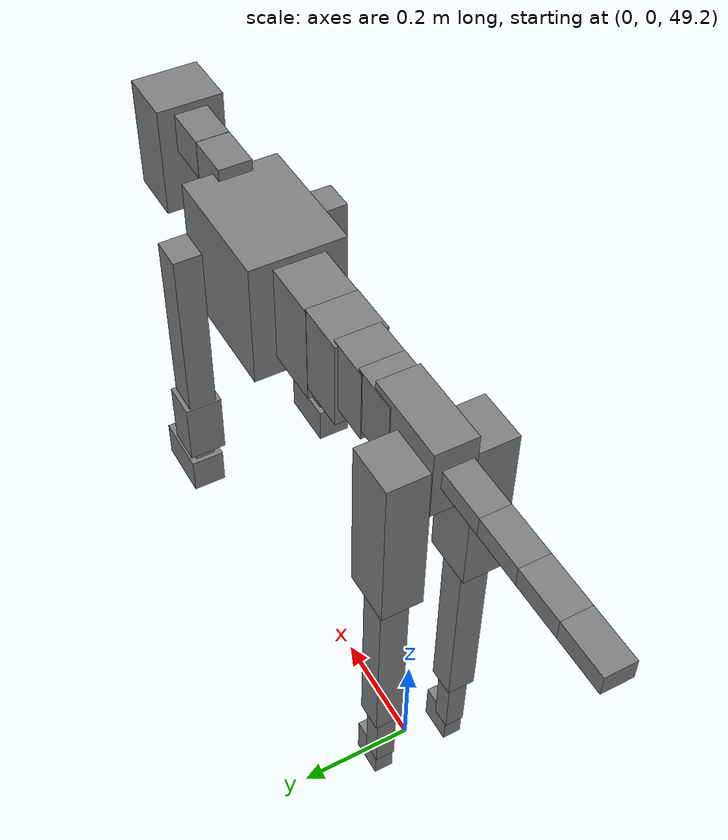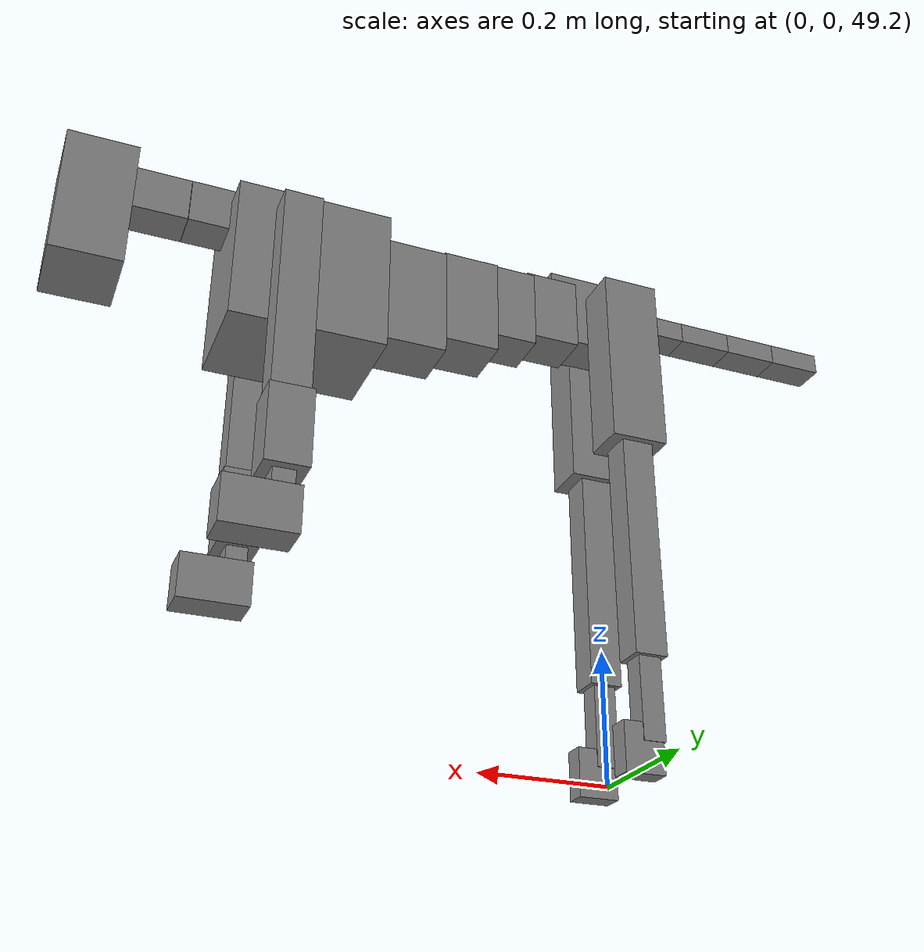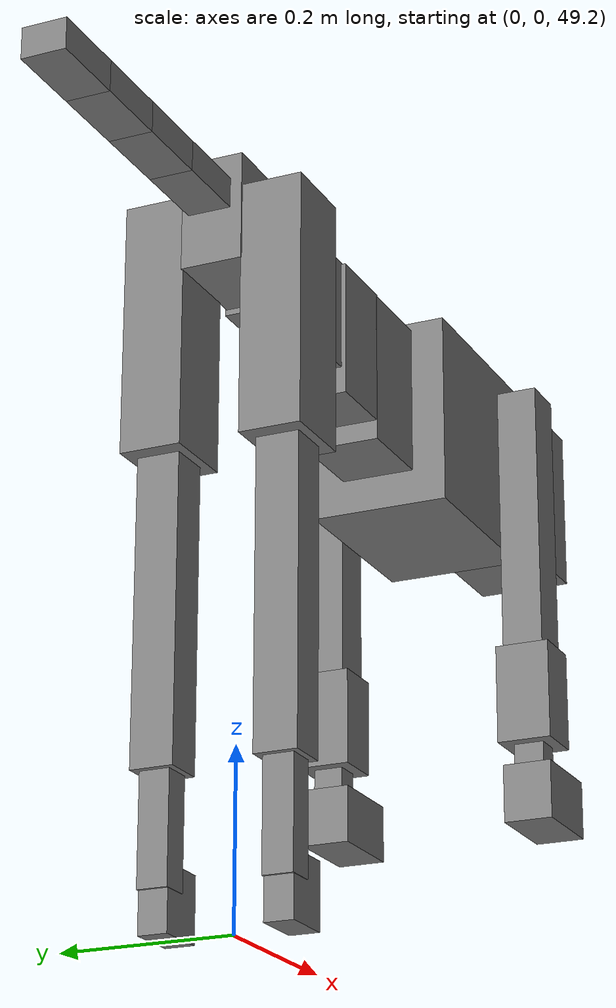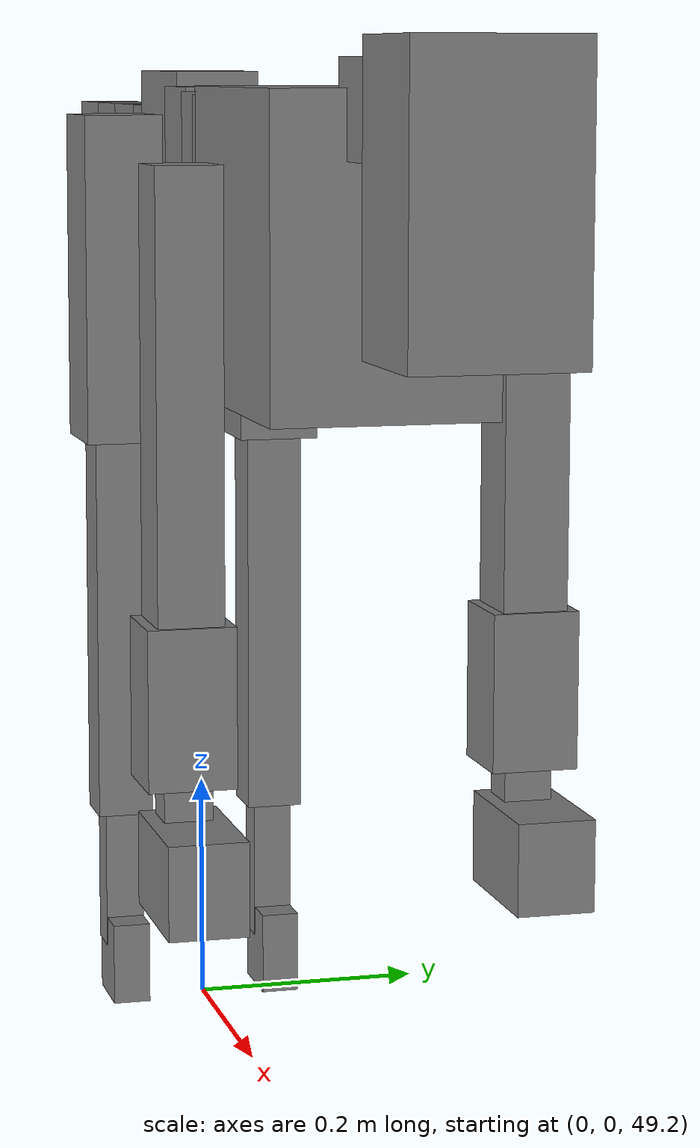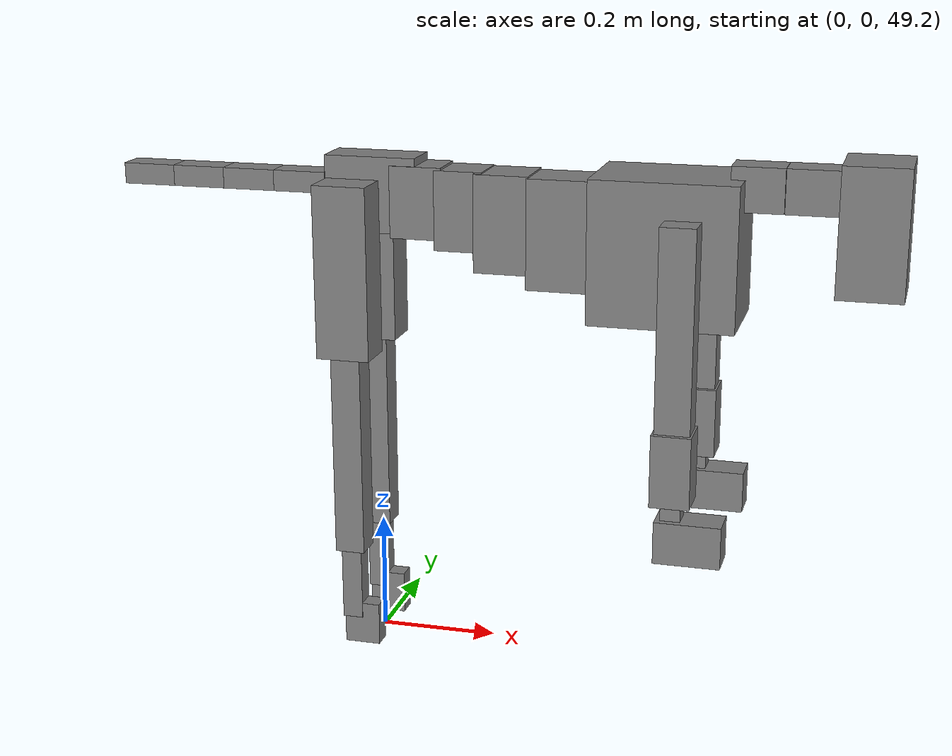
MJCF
<mujoco model="dog">

    <default>
        <joint armature="0.02" stiffness="1" damping="0.2" limited="true"/>
        <geom condim="3" friction="1 0.05 0.05" margin="0.01"/>
        <motor ctrllimited="true" ctrlrange="-1.0 1.0" forcelimited="true" gear="50"/>
    </default>

    <compiler inertiafromgeom="true" angle="radian"/>

    <option timestep="0.016" iterations="50" tolerance="1e-10" solver="Newton" jacobian="dense" cone="pyramidal"/>

    <size nconmax="20000" njmax="60000" nstack="5000000"/>
    <visual>
        <map force="0.1" zfar="30"/>
        <rgba haze="0.15 0.25 0.35 1"/>
        <quality shadowsize="2048"/>
        <global offwidth="800" offheight="800"/>
    </visual>

    <asset>
        <texture type="skybox" builtin="gradient" rgb1="0.3 0.5 0.7" rgb2="0 0 0" width="512" height="512"/>
        <texture name="texplane" type="2d" builtin="checker" rgb1=".2 .3 .4" rgb2=".1 0.15 0.2" width="512" height="512"
                 mark="cross" markrgb=".8 .8 .8"/>
        <texture name="texgeom" type="cube" builtin="flat" mark="cross" width="127" height="1278" rgb1="0.8 0.6 0.4"
                 rgb2="0.8 0.6 0.4" markrgb="1 1 1" random="0.01"/>

        <material name="matplane" reflectance="0.3" texture="texplane" texrepeat="1 1" texuniform="true"/>
        <material name="matgeom" texture="texgeom" texuniform="true" rgba="0.8 0.6 .4 1"/>
    </asset>

    <worldbody>
        <geom name="floor" pos="0 0 0" size="0 0 .25" type="plane" material="matplane" condim="3"/>

        <light directional="false" diffuse=".2 .2 .2" specular="0 0 0" pos="0 0 5" dir="0 0 -1" castshadow="false"/>
        <light mode="targetbodycom" target="torso" directional="false" diffuse=".8 .8 .8" specular="0.3 0.3 0.3"
               pos="0 0 4.0" dir="0 0 -1"/>

        <body name="root" pos="0 0 50">
            <freejoint name="root_1"/>
            <geom type="box" pos="0 0 -0.02" size="0.0774  0.0358  0.063" density="2030"/>

            <body name="spine1" pos="0.054 0 0">
                <joint name="spine1_y" axis="0 1 0" range="0 0.7" limited="true"/>
                <geom type="box" pos="0.02375 0 -0.03" size="0.04375  0.0375  0.05985" density="2030"/>

                <body name="spine2" pos="0.0612 0 0">
                    <joint name="spine2_y" axis="0 1 0" range="-0.15 0.15" limited="true"/>
                    <geom type="box" pos="0.03555  0  -0.04" size="0.04055  0.039  0.06615" density="2030"/>

                    <body name="spine3" pos="0.0730 0 0">
                        <joint name="spine3_y" axis="0 1 0" range="-0.15 0.15" limited="true"/>
                        <geom type="box" pos="0.03555  0  -0.057" size="0.04555  0.0445  0.081" density="2030"/>

                        <body name="spine4" pos="0.0780 0 0">
                            <joint name="spine4_y" axis="0 1 0" range="-0.15 0.15" limited="true"/>
                            <geom type="box" pos="0.05265  0  -0.07" size="0.05265  0.045  0.09135" density="2030"/>

                            <body name="torso" pos="0.1082 0 0">
                                <joint name="torso_y" axis="0 1 0" range="-0.15 0.15" limited="true"/>
                                <geom type="box" pos="0.11925  0  -0.085" size="0.11925  0.085  0.11745"
                                      density="2030"/>

                                <body name="neck1" pos="0.2160  0   0.0180">
                                    <joint name="neck1_y" axis="0 1 0" range="-1.2  -1" limited="true"/>
                                    <geom type="box" pos="0.0423  0  0" size="0.0423  0.03  0.036" density="2325"/>

                                    <body name="neck2" pos="0.0853  0  0">
                                        <joint name="neck2_y" axis="0 1 0" range="0.1  0" limited="true"/>
                                        <geom type="box" pos="0.0423  0  0" size="0.0423  0.03  0.036" density="2325"/>

                                        <body name="head" pos="0.0853  0  0">
                                            <joint name="head_y" axis="0 1 0" range="-0.3  -0.2" limited="true"/>
                                            <geom type="box" pos="0.0531  0  -0.055" size="0.0531  0.06  0.1044"
                                                  density="4030"/>

                                        </body>
                                    </body>
                                </body>

                                <body name="front_shoulder" pos="0.156  0   -0.0480">
                                    <joint name="front_shoulder_y" axis="0 1 0" range="-1 1.5" limited="true"/>
                                    <geom type="box" pos="0 0.13 -0.1515" size="0.0288  0.0247  0.1782" density="1158"/>
                                    <geom type="box" pos="0 -0.13 -0.1515" size="0.0288  0.0247  0.1782"
                                          density="1158"/>

                                    <body name="front_elbow" pos="0  0  -0.3031">
                                        <joint name="front_elbow_y" axis="0 1 0" range="-2 0" limited="true"/>
                                        <geom type="box" pos="0 0.13 -0.0598" size="0.0322  0.0329  0.0598"
                                              density="1081"/>
                                        <geom type="box" pos="0 -0.13 -0.0598" size="0.0322  0.0329  0.0598"
                                              density="1081"/>

                                        <body name="front_wrist" pos="0  0  -0.1195">
                                            <joint name="front_wrist_y" axis="0 1 0" range="-0.2 0" limited="true"/>
                                            <geom type="box" pos="0 0.13 -0.0206" size="0.0163  0.0182  0.0338"
                                                  density="1664"/>
                                            <geom type="box" pos="0 -0.13 -0.0206" size="0.0163  0.0182  0.0338"
                                                  density="1664"/>

                                            <body name="front_finger_end" pos="0  0  -0.0412">
                                                <joint name="front_finger_y" axis="0 1 0" range="-0.4 1"
                                                       limited="true"/>
                                                <geom type="box" pos="0.0295  0.13  -0.0199"
                                                      size="0.0542  0.0295  0.0349" density="1515"/>
                                                <geom type="box" pos="0.0295  -0.13  -0.0199"
                                                      size="0.0542  0.0295  0.0349" density="1515"/>

                                            </body>

                                        </body>
                                    </body>
                                </body>

                            </body>
                        </body>
                    </body>
                </body>
            </body>

            <body name="back_hip" pos="-0.03 0 -0.018">
                <joint name="back_hip_y" axis="0 1 0" range="-1.5 0.3" limited="true"/>
                <geom type="box" pos="0 0.07 -0.1224" size="0.0452  0.0354  0.1452" density="1154"/>
                <geom type="box" pos="0 -0.07 -0.1224" size="0.0452  0.0354  0.1452" density="1154"/>

                <body name="back_knee" pos="0  0  -0.2448">
                    <joint name="back_knee_y" axis="0 1 0" range="0 2.8" limited="true"/>
                    <geom type="box" pos="0 0.07 -0.1762" size="0.0251  0.0247  0.1918" density="1227"/>
                    <geom type="box" pos="0 -0.07 -0.1762" size="0.0251  0.0247  0.1918" density="1227"/>

                    <body name="back_ankle" pos="0  0  -0.3524">
                        <joint name="back_ankle_y" axis="0 1 0" range="-2.2 0" limited="true"/>
                        <geom type="box" pos="0 0.07 -0.0642" size="0.0173  0.0173  0.0754" density="1284"/>
                        <geom type="box" pos="0 -0.07 -0.0642" size="0.0173  0.0173  0.0754" density="1284"/>

                        <body name="back_toe_end" pos="0  0  -0.1284">
                            <joint name="back_toe_y" axis="0 1 0" range="-0.4 1" limited="true"/>
                            <geom type="box" pos="0.0166  0.07  -0.0215" size="0.0305  0.0166  0.0365" density="1515"/>
                            <geom type="box" pos="0.0166  -0.07  -0.0215" size="0.0305  0.0166  0.0365" density="1515"/>

                        </body>
                    </body>
                </body>
            </body>

            <body name="tail1" pos="-0.074 0 -0.006">
                <joint name="tail1_y" axis="0 1 0" range="-0.2 0.2" limited="true"/>
                <geom type="box" pos="-0.0536  0  0" size="0.045  0.025  0.0175" density="1587"/>

                <body name="tail2" pos="-0.09 0 0">
                    <joint name="tail2_y" axis="0 1 0" range="-0.2 0.2" limited="true"/>
                    <geom type="box" pos="-0.0536  0  0" size="0.045  0.025  0.0175" density="1587"/>

                    <body name="tail3" pos="-0.09 0 0">
                        <joint name="tail3_y" axis="0 1 0" range="-0.2 0.2" limited="true"/>
                        <geom type="box" pos="-0.0536  0  0" size="0.045  0.025  0.0175" density="1587"/>

                        <body name="tail4" pos="-0.09 0 0">
                            <joint name="tail4_y" axis="0 1 0" range="-0.2 0.2" limited="true"/>
                            <geom type="box" pos="-0.0536  0  0" size="0.045  0.025  0.0175" density="1587"/>

                        </body>
                    </body>
                </body>
            </body>
        </body>
    </worldbody>

    <actuator>
        <motor joint="spine1_y" forcerange="-150 150     "/>
        <motor joint="spine2_y" forcerange="-150 150     "/>
        <motor joint="spine3_y" forcerange="-150 150     "/>
        <motor joint="spine4_y" forcerange="-150 150     "/>
        <motor joint="torso_y" forcerange="-150 150     "/>
        <motor joint="neck1_y" forcerange="-100 100       "/>
        <motor joint="neck2_y" forcerange="-100 100       "/>
        <motor joint="head_y" forcerange="-150 150       "/>
        <motor joint="front_shoulder_y" forcerange="-159.05 105.28"/>
        <motor joint="front_elbow_y" forcerange="-168.01 171.49"/>
        <motor joint="front_wrist_y" forcerange="-72.13 73.07"/>
        <motor joint="front_finger_y" forcerange="-22.75 94.78"/>
        <motor joint="back_hip_y" forcerange="-399.86 272.52"/>
        <motor joint="back_knee_y" forcerange="-253.75 305.75"/>
        <motor joint="back_angle_y" forcerange="-115.87 60.96"/>
        <motor joint="back_toe_y" forcerange="-29.99 23.13"/>
        <motor joint="tail1_y" forcerange="-50 50     "/>
        <motor joint="tail2_y" forcerange="-50 50     "/>
        <motor joint="tail3_y" forcerange="-50 50     "/>
        <motor joint="tail4_y" forcerange="-50 50     "/>
    </actuator>
</mujoco>
